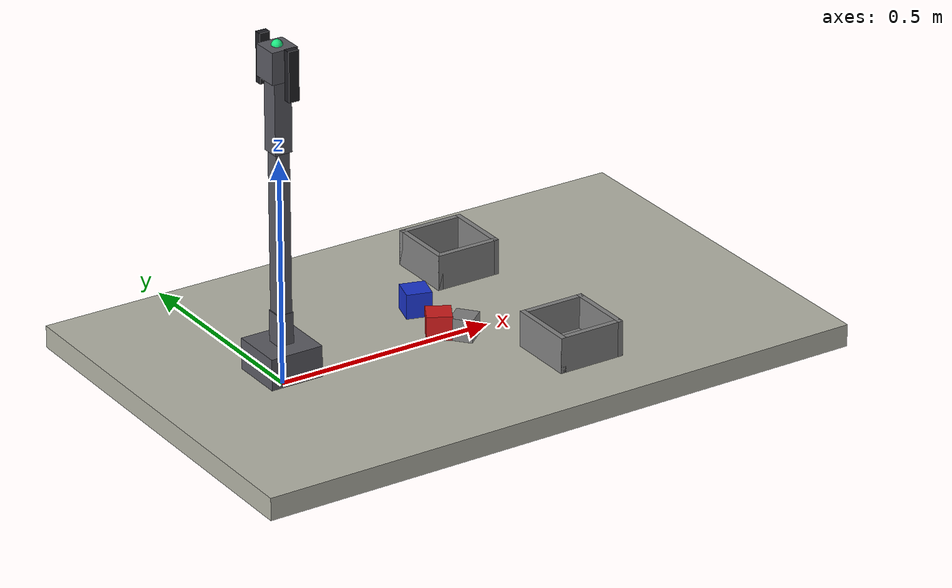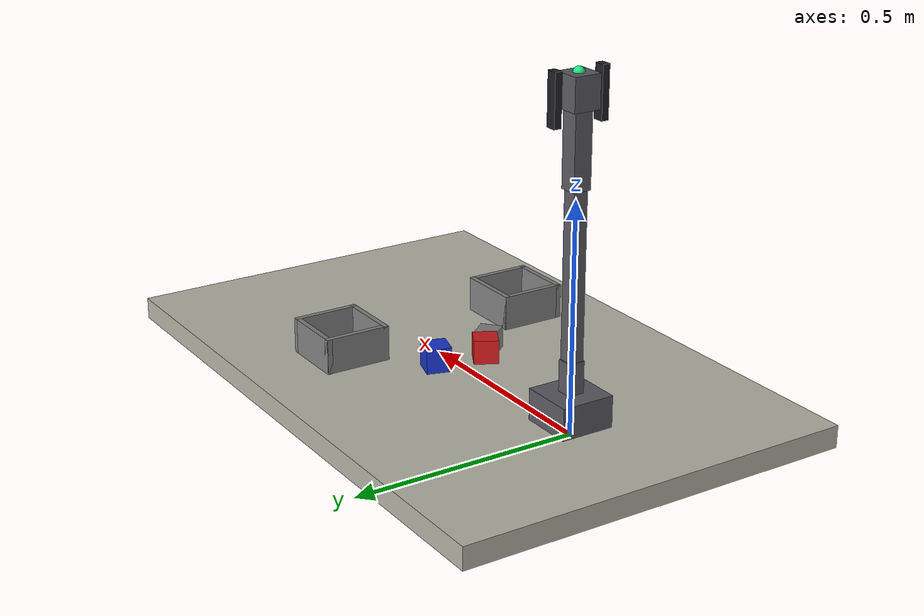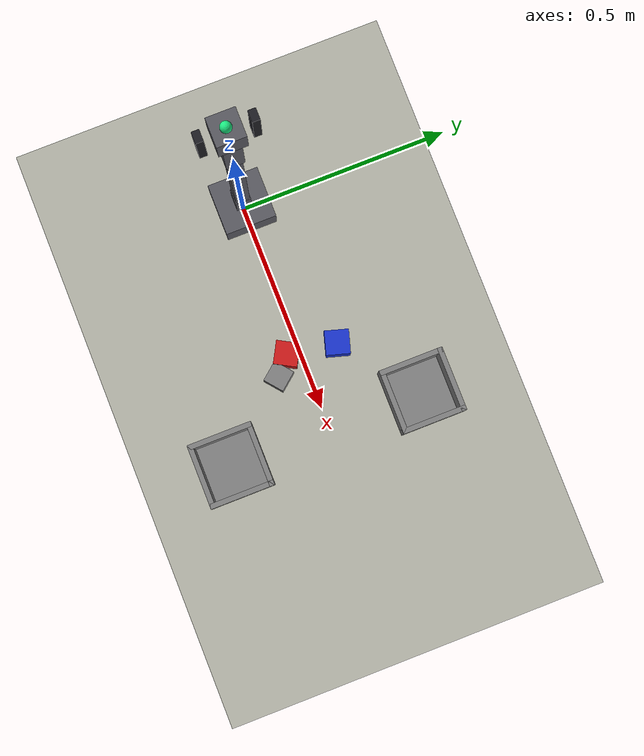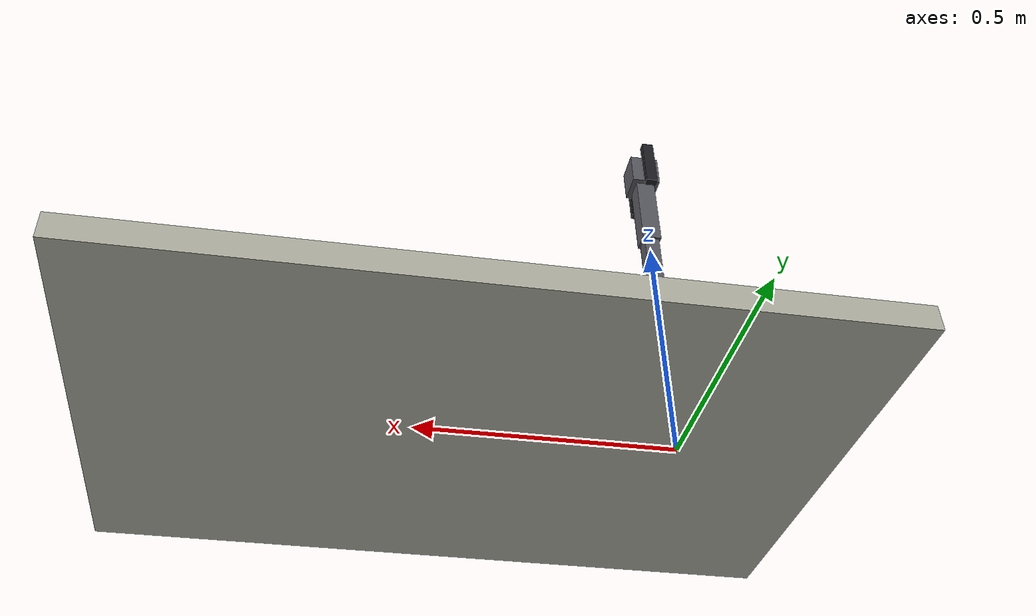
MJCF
<mujoco model="Autonomous reference tabletop arm scene_task_req_a_tabletop_robot_arm_that_sorts_red_and_blue_blo_variation_001">
  <compiler angle="radian" coordinate="local" />
  <option timestep="0.002" gravity="0 0 -9.81" />
  <!-- scene_set_id=scenes_task_req_a_tabletop_robot_arm_that_sorts_red_and_blue_blo_variation scene_id=scene_task_req_a_tabletop_robot_arm_that_sorts_red_and_blue_blo_variation_001 -->
  <default>
    <joint damping="0.8" armature="0.01" />
    <geom friction="1 0.1 0.01" />
  </default>
  <asset>
    <material name="mat_red" rgba="0.8 0.1 0.1 1" />
    <material name="mat_blue" rgba="0.1 0.2 0.8 1" />
    <material name="mat_gray" rgba="0.5 0.5 0.5 1" />
    <material name="mat_link" rgba="0.35 0.35 0.38 1" />
  </asset>
  <worldbody>
    <light name="key" pos="0 0 2" dir="0 0 -1" />
    <geom name="table" type="box" size="0.7 0.45 0.025" pos="0.4 0 0" rgba="0.7 0.7 0.65 1" />
    <body name="base_link" pos="0.0 0.0 0.025">
      <geom name="base_link_geom" type="box" size="0.06 0.06 0.035" pos="0 0 0.035" mass="0.45" material="mat_link" />
      <body name="upper_link" pos="0.0 0.0 0.07">
        <joint name="base_yaw" type="hinge" axis="0.0 0.0 1.0" pos="0 0 0" limited="true" range="-3.14 3.14" />
        <geom name="upper_link_geom" type="box" size="0.018 0.018 0.035" pos="0 0 0.035" mass="0.22" material="mat_link" />
        <body name="forearm_link" pos="0.0 0.0 0.07">
          <joint name="shoulder_pitch" type="hinge" axis="0.0 1.0 0.0" pos="0 0 0" limited="true" range="-1.57 1.57" />
          <geom name="forearm_link_geom" type="box" size="0.016 0.016 0.1785" pos="0 0 0.1785" mass="0.18" material="mat_link" />
          <body name="wrist_link" pos="0.0 0.0 0.357">
            <joint name="elbow_pitch" type="hinge" axis="0.0 1.0 0.0" pos="0 0 0" limited="true" range="-1.57 1.57" />
            <geom name="wrist_link_geom" type="box" size="0.02 0.02 0.08" pos="0 0 0.08" mass="0.035" material="mat_link" />
            <camera name="wrist_rgbd_camera" pos="0.03 0.0 0.04" xyaxes="0 -1 0 0 0 1" mode="fixed" user="0.0 0.0 0.0" />
            <body name="gripper_link" pos="0.0 0.0 0.16">
              <geom name="gripper_link_geom" type="box" size="0.03 0.03 0.035" pos="0 0 0.035" mass="0.04" material="mat_link" />
              <site name="ee_site" pos="0 0 0.07" size="0.012" rgba="0.1 0.9 0.5 1" />
              <site name="grasp_site" pos="0 0 0.015" size="0.01" rgba="1 0.7 0.1 1" />
              <body name="left_gripper_finger" pos="0 0.055 0.07">
                <joint name="left_gripper_slide" type="slide" axis="0 -1 0" limited="true" range="0 0.04" damping="2.0" />
                <geom name="left_gripper_pad" type="box" size="0.012 0.008 0.055" pos="0 0 -0.045" mass="0.025" rgba="0.12 0.12 0.14 1" friction="1.5 0.1 0.01" />
              </body>
              <body name="right_gripper_finger" pos="0 -0.055 0.07">
                <joint name="right_gripper_slide" type="slide" axis="0 1 0" limited="true" range="0 0.04" damping="2.0" />
                <geom name="right_gripper_pad" type="box" size="0.012 0.008 0.055" pos="0 0 -0.045" mass="0.025" rgba="0.12 0.12 0.14 1" friction="1.5 0.1 0.01" />
              </body>
            </body>
          </body>
        </body>
      </body>
    </body>
    <body name="obj_red_block" pos="0.36 -0.0312 0.0533" euler="0 0 -2.0785">
      <freejoint name="free_red_block" />
      <geom name="red_block" type="box" size="0.0273 0.0273 0.0273" mass="0.0431" friction="0.987 0.1 0.01" material="mat_red" />
    </body>
    <body name="obj_blue_block" pos="0.3776 0.085 0.054" euler="0 0 1.2858">
      <freejoint name="free_blue_block" />
      <geom name="blue_block" type="box" size="0.028 0.028 0.028" mass="0.065" friction="1.212 0.1 0.01" material="mat_blue" />
    </body>
    <geom name="red_bin" type="box" size="0.07 0.07 0.004" pos="0.55 -0.2382 0.029" material="mat_gray" />
    <geom name="red_bin_wall_px" type="box" size="0.006 0.07600000000000001 0.04" pos="0.62 -0.2382 0.065" material="mat_gray" />
    <geom name="red_bin_wall_nx" type="box" size="0.006 0.07600000000000001 0.04" pos="0.48 -0.2382 0.065" material="mat_gray" />
    <geom name="red_bin_wall_py" type="box" size="0.07600000000000001 0.006 0.04" pos="0.55 -0.1682 0.065" material="mat_gray" />
    <geom name="red_bin_wall_ny" type="box" size="0.07600000000000001 0.006 0.04" pos="0.55 -0.3082 0.065" material="mat_gray" />
    <geom name="blue_bin" type="box" size="0.07 0.07 0.004" pos="0.55 0.2223 0.029" material="mat_gray" />
    <geom name="blue_bin_wall_px" type="box" size="0.006 0.07600000000000001 0.04" pos="0.62 0.2223 0.065" material="mat_gray" />
    <geom name="blue_bin_wall_nx" type="box" size="0.006 0.07600000000000001 0.04" pos="0.48 0.2223 0.065" material="mat_gray" />
    <geom name="blue_bin_wall_py" type="box" size="0.07600000000000001 0.006 0.04" pos="0.55 0.2923 0.065" material="mat_gray" />
    <geom name="blue_bin_wall_ny" type="box" size="0.07600000000000001 0.006 0.04" pos="0.55 0.1523 0.065" material="mat_gray" />
    <body name="obj_distractor_1_0" pos="0.4007 -0.0662 0.0511" euler="0 0 2.2574">
      <freejoint name="free_distractor_1_0" />
      <geom name="distractor_1_0" type="box" size="0.0251 0.0251 0.0251" mass="0.0577" friction="1.167 0.1 0.01" material="mat_gray" />
    </body>
  </worldbody>
  <actuator>
    <motor name="base_yaw_motor" joint="base_yaw" gear="1" forcerange="-12.0 12.0" />
    <motor name="shoulder_pitch_motor" joint="shoulder_pitch" gear="1" forcerange="-12.0 12.0" />
    <motor name="elbow_pitch_motor" joint="elbow_pitch" gear="1" forcerange="-12.0 12.0" />
    <motor name="left_gripper_slide_motor" joint="left_gripper_slide" gear="1" forcerange="-25 25" />
    <motor name="right_gripper_slide_motor" joint="right_gripper_slide" gear="1" forcerange="-25 25" />
  </actuator>
  <sensor>
    <framepos name="wrist_rgbd_camera_pose" objtype="camera" objname="wrist_rgbd_camera" />
    <framequat name="wrist_rgbd_camera_orientation" objtype="camera" objname="wrist_rgbd_camera" />
  </sensor>
</mujoco>
